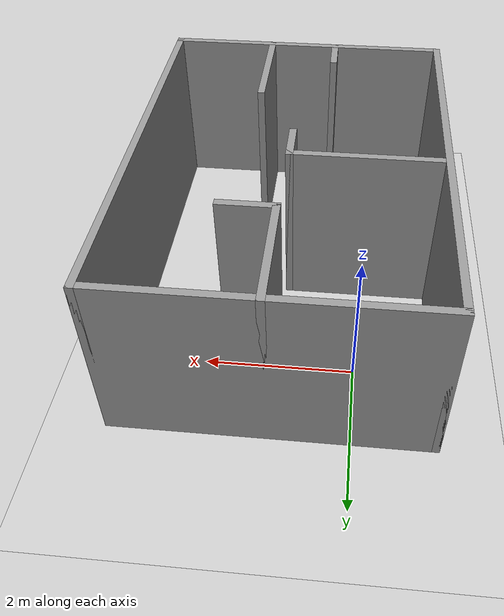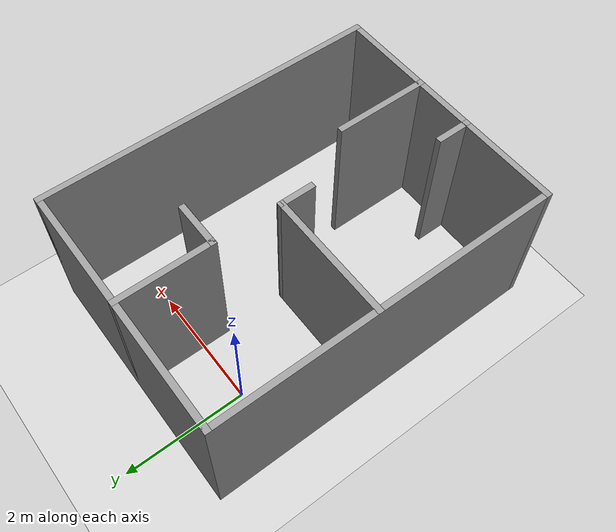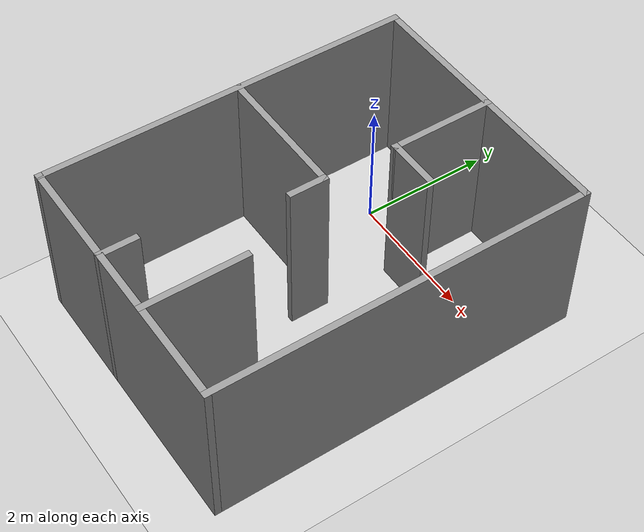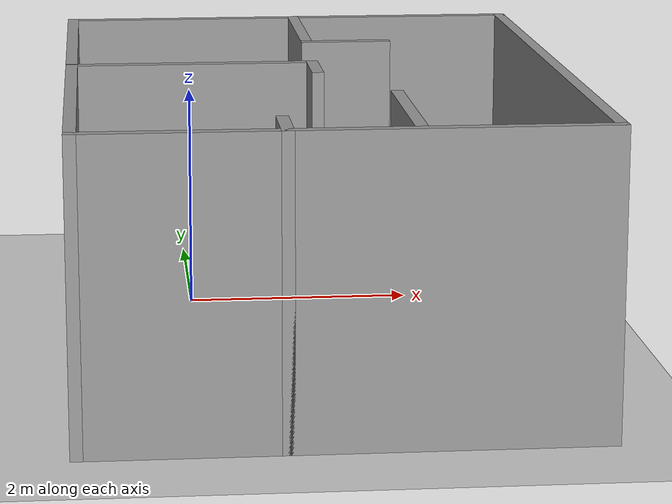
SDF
<sdf version="1.7">
 <world name="default">
  <light name="sun" type="directional">
   <pose>0 0 10 0 -0 0</pose>
   <diffuse>0.8 0.8 0.8 1</diffuse>
   <specular>0.2 0.2 0.2 1</specular>
   <attenuation>
    <range>1000</range>
    <constant>0.9</constant>
    <linear>0.01</linear>
    <quadratic>0.001</quadratic>
   </attenuation>
   <direction>-0.5 0.1 -0.9</direction>
   <spot><inner_angle>0</inner_angle><outer_angle>0</outer_angle><falloff>0</falloff></spot>
  </light>
  <model name="ground_plane">
   <static>1</static>
   <link name="link">
    <collision name="collision">
     <geometry><plane><normal>0 0 1</normal><size>100 100</size></plane></geometry>
     <surface>
      <contact><collide_bitmask>65535</collide_bitmask></contact>
      <friction><ode><mu>100</mu><mu2>50</mu2></ode></friction>
     </surface>
    </collision>
    <visual name="visual">
     <cast_shadows>0</cast_shadows>
     <geometry><plane><normal>0 0 1</normal><size>100 100</size></plane></geometry>
     <material>
      <script><uri>file://media/materials/scripts/gazebo.material</uri><name>Gazebo/Grey</name></script>
     </material>
    </visual>
   </link>
  </model>
  <gravity>0 0 -9.8</gravity>
  <magnetic_field>6e-06 2.3e-05 -4.2e-05</magnetic_field>
  <atmosphere type="adiabatic"/>
  <physics type="ode">
   <max_step_size>0.001</max_step_size>
   <real_time_factor>1</real_time_factor>
   <real_time_update_rate>1000</real_time_update_rate>
  </physics>
  <scene><ambient>0.4 0.4 0.4 1</ambient><background>0.7 0.7 0.7 1</background><shadows>1</shadows></scene>
  <spherical_coordinates>
   <surface_model>EARTH_WGS84</surface_model>
   <latitude_deg>0</latitude_deg>
   <longitude_deg>0</longitude_deg>
   <elevation>0</elevation>
   <heading_deg>0</heading_deg>
  </spherical_coordinates>
  <model name="maze1">
   <pose>0.996564 -1.71716 0 0 -0 0</pose>
   <link name="Wall_56">
    <collision name="Wall_56_Collision">
     <geometry><box><size>4.2 0.1 2.5</size></box></geometry>
     <pose>0 0 1.25 0 -0 0</pose>
    </collision>
    <visual name="Wall_56_Visual">
     <pose>0 0 1.25 0 -0 0</pose>
     <geometry><box><size>4.2 0.1 2.5</size></box></geometry>
     <material>
      <script><uri>file://media/materials/scripts/gazebo.material</uri><name>Gazebo/Grey</name></script>
      <ambient>1 1 1 1</ambient>
     </material>
     <meta><layer>0</layer></meta>
    </visual>
    <pose>0 2.8 0 0 -0 0</pose>
   </link>
   <link name="Wall_62">
    <collision name="Wall_62_Collision">
     <geometry><box><size>5.7 0.1 2.5</size></box></geometry>
     <pose>0 0 1.25 0 -0 0</pose>
    </collision>
    <visual name="Wall_62_Visual">
     <pose>0 0 1.25 0 -0 0</pose>
     <geometry><box><size>5.7 0.1 2.5</size></box></geometry>
     <material>
      <script><uri>file://media/materials/scripts/gazebo.material</uri><name>Gazebo/Grey</name></script>
      <ambient>1 1 1 1</ambient>
     </material>
     <meta><layer>0</layer></meta>
    </visual>
    <pose>2.05 0 0 0 -0 -1.5708</pose>
   </link>
   <link name="Wall_64">
    <collision name="Wall_64_Collision">
     <geometry><box><size>4.2 0.1 2.5</size></box></geometry>
     <pose>0 0 1.25 0 -0 0</pose>
    </collision>
    <visual name="Wall_64_Visual">
     <pose>0 0 1.25 0 -0 0</pose>
     <geometry><box><size>4.2 0.1 2.5</size></box></geometry>
     <material>
      <script><uri>file://media/materials/scripts/gazebo.material</uri><name>Gazebo/Grey</name></script>
      <ambient>1 1 1 1</ambient>
     </material>
     <meta><layer>0</layer></meta>
    </visual>
    <pose>0 -2.8 0 0 -0 3.14159</pose>
   </link>
   <link name="Wall_66">
    <collision name="Wall_66_Collision">
     <geometry><box><size>5.7 0.1 2.5</size></box></geometry>
     <pose>0 0 1.25 0 -0 0</pose>
    </collision>
    <visual name="Wall_66_Visual">
     <pose>0 0 1.25 0 -0 0</pose>
     <geometry><box><size>5.7 0.1 2.5</size></box></geometry>
     <material>
      <script><uri>file://media/materials/scripts/gazebo.material</uri><name>Gazebo/Grey</name></script>
      <ambient>1 1 1 1</ambient>
     </material>
     <meta><layer>0</layer></meta>
    </visual>
    <pose>-2.05 0 0 0 -0 1.5708</pose>
   </link>
   <link name="Wall_68">
    <collision name="Wall_68_Collision">
     <geometry><box><size>1.6 0.1 2.5</size></box></geometry>
     <pose>0 0 1.25 0 -0 0</pose>
    </collision>
    <visual name="Wall_68_Visual">
     <pose>0 0 1.25 0 -0 0</pose>
     <geometry><box><size>1.6 0.1 2.5</size></box></geometry>
     <material>
      <script><uri>file://media/materials/scripts/gazebo.material</uri><name>Gazebo/Grey</name></script>
      <ambient>1 1 1 1</ambient>
     </material>
     <meta><layer>0</layer></meta>
    </visual>
    <pose>0.05 2.05 0 0 -0 -1.5708</pose>
   </link>
   <link name="Wall_70">
    <collision name="Wall_70_Collision">
     <geometry><box><size>0.8 0.1 2.5</size></box></geometry>
     <pose>0 0 1.25 0 -0 0</pose>
    </collision>
    <visual name="Wall_70_Visual">
     <pose>0 0 1.25 0 -0 0</pose>
     <geometry><box><size>0.8 0.1 2.5</size></box></geometry>
     <material>
      <script><uri>file://media/materials/scripts/gazebo.material</uri><name>Gazebo/Grey</name></script>
      <ambient>1 1 1 1</ambient>
     </material>
     <meta><layer>0</layer></meta>
    </visual>
    <pose>0.4 1.3 0 0 -0 0</pose>
   </link>
   <link name="Wall_72">
    <collision name="Wall_72_Collision">
     <geometry><box><size>2.15 0.1 2.5</size></box></geometry>
     <pose>0 0 1.25 0 -0 0</pose>
    </collision>
    <visual name="Wall_72_Visual">
     <pose>0 0 1.25 0 -0 0</pose>
     <geometry><box><size>2.15 0.1 2.5</size></box></geometry>
     <material>
      <script><uri>file://media/materials/scripts/gazebo.material</uri><name>Gazebo/Grey</name></script>
      <ambient>1 1 1 1</ambient>
     </material>
     <meta><layer>0</layer></meta>
    </visual>
    <pose>-1.025 0.2 0 0 -0 0</pose>
   </link>
   <link name="Wall_74">
    <collision name="Wall_74_Collision">
     <geometry><box><size>0.6 0.1 2.5</size></box></geometry>
     <pose>0 0 1.25 0 -0 0</pose>
    </collision>
    <visual name="Wall_74_Visual">
     <pose>0 0 1.25 0 -0 0</pose>
     <geometry><box><size>0.6 0.1 2.5</size></box></geometry>
     <material>
      <script><uri>file://media/materials/scripts/gazebo.material</uri><name>Gazebo/Grey</name></script>
      <ambient>1 1 1 1</ambient>
     </material>
     <meta><layer>0</layer></meta>
    </visual>
    <pose>0 -0.05 0 0 -0 -1.5708</pose>
   </link>
   <link name="Wall_76">
    <collision name="Wall_76_Collision">
     <geometry><box><size>0.6 0.1 2.5</size></box></geometry>
     <pose>0 0 1.25 0 -0 0</pose>
    </collision>
    <visual name="Wall_76_Visual">
     <pose>0 0 1.25 0 -0 0</pose>
     <geometry><box><size>0.6 0.1 2.5</size></box></geometry>
     <material>
      <script><uri>file://media/materials/scripts/gazebo.material</uri><name>Gazebo/Grey</name></script>
      <ambient>1 1 1 1</ambient>
     </material>
     <meta><layer>0</layer></meta>
    </visual>
    <pose>-0.45 -2.55 0 0 -0 1.5708</pose>
   </link>
   <link name="Wall_80">
    <collision name="Wall_80_Collision">
     <geometry><box><size>1.6 0.1 2.5</size></box></geometry>
     <pose>0 0 1.25 0 -0 0</pose>
    </collision>
    <visual name="Wall_80_Visual">
     <pose>0 0 1.25 0 -0 0</pose>
     <geometry><box><size>1.6 0.1 2.5</size></box></geometry>
     <material>
      <script><uri>file://media/materials/scripts/gazebo.material</uri><name>Gazebo/Grey</name></script>
      <ambient>1 1 1 1</ambient>
     </material>
     <meta><layer>0</layer></meta>
    </visual>
    <pose>0.55 -2.05 0 0 -0 1.5708</pose>
   </link>
   <static>1</static>
  </model>
 </world>
</sdf>
